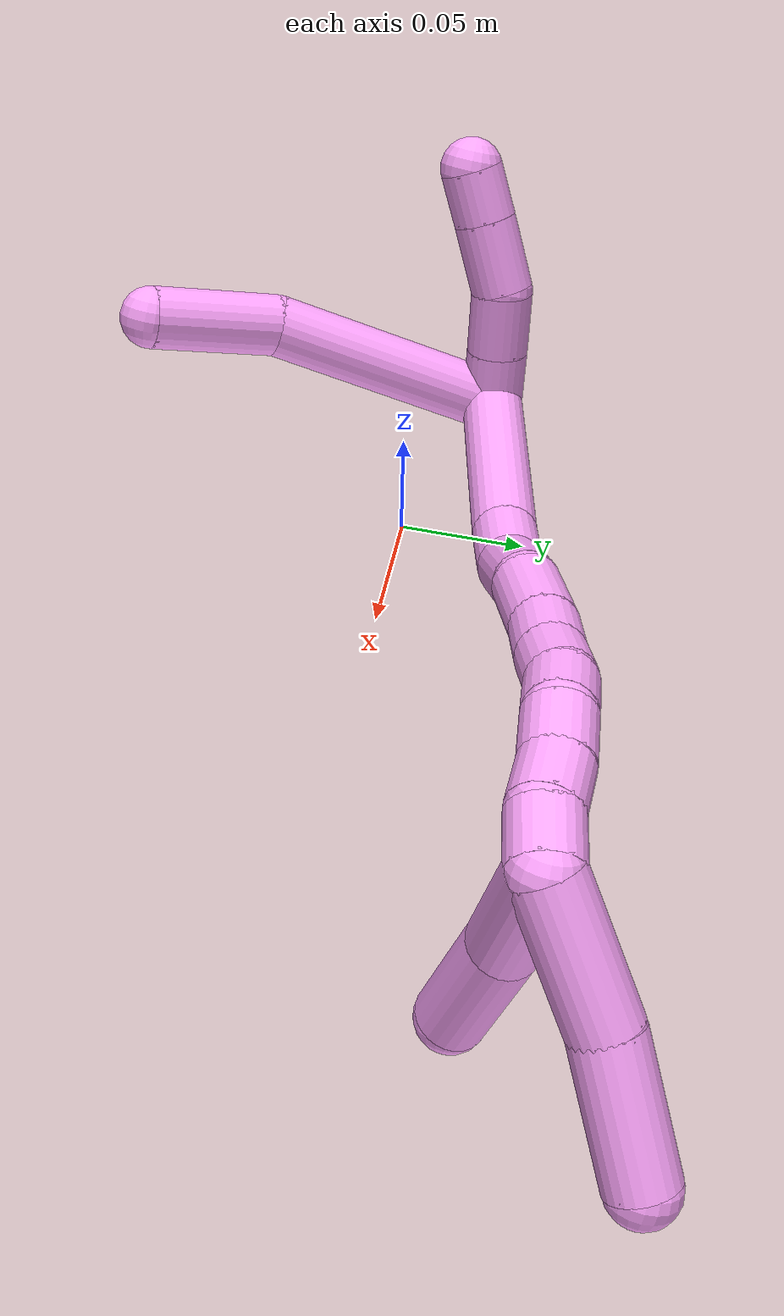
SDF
<sdf version="1.7">
 <world name="default">
  <model name="4">
   <static>0</static>
   <link name="4">
    <collision name="collision-cylinder-e_1_2_8">
     <pose>0.024315 -0.041398 0.007926 1.38163 0.523233 0.435683</pose>
     <geometry><cylinder><radius>0.0125</radius><length>0.097321</length></cylinder></geometry>
     <surface>
      <friction><ode><mu>1.16</mu><mu2>1.16</mu2><slip1>0</slip1><slip2>0</slip2></ode></friction>
      <contact><ode><kp>1e+06</kp><kd>1</kd><max_vel>0</max_vel><min_depth>0.001</min_depth></ode></contact>
     </surface>
    </collision>
    <visual name="visual-cylinder-e_1_2_8">
     <pose>0.024315 -0.041398 0.007926 1.38163 0.523233 0.435683</pose>
     <geometry><cylinder><radius>0.0125</radius><length>0.097321</length></cylinder></geometry>
     <material><ambient>1 0.65098 0.996078 1</ambient></material>
    </visual>
    <collision name="collision-cylinder-e_2_8_6">
     <pose>0.067047 -0.101564 0.014313 1.6526 0.774326 0.833268</pose>
     <geometry><cylinder><radius>0.0125</radius><length>0.052679</length></cylinder></geometry>
     <surface>
      <friction><ode><mu>1.16</mu><mu2>1.16</mu2><slip1>0</slip1><slip2>0</slip2></ode></friction>
      <contact><ode><kp>1e+06</kp><kd>1</kd><max_vel>0</max_vel><min_depth>0.001</min_depth></ode></contact>
     </surface>
    </collision>
    <visual name="visual-cylinder-e_2_8_6">
     <pose>0.067047 -0.101564 0.014313 1.6526 0.774326 0.833268</pose>
     <geometry><cylinder><radius>0.0125</radius><length>0.052679</length></cylinder></geometry>
     <material><ambient>1 0.65098 0.996078 1</ambient></material>
    </visual>
    <collision name="collision-cylinder-e_1_2_9">
     <pose>0.002675 -0.000629 0.011174 0.056251 0.234586 0.00663</pose>
     <geometry><cylinder><radius>0.0125</radius><length>0.023015</length></cylinder></geometry>
     <surface>
      <friction><ode><mu>1.16</mu><mu2>1.16</mu2><slip1>0</slip1><slip2>0</slip2></ode></friction>
      <contact><ode><kp>1e+06</kp><kd>1</kd><max_vel>0</max_vel><min_depth>0.001</min_depth></ode></contact>
     </surface>
    </collision>
    <visual name="visual-cylinder-e_1_2_9">
     <pose>0.002675 -0.000629 0.011174 0.056251 0.234586 0.00663</pose>
     <geometry><cylinder><radius>0.0125</radius><length>0.023015</length></cylinder></geometry>
     <material><ambient>1 0.65098 0.996078 1</ambient></material>
    </visual>
    <collision name="collision-cylinder-e_2_9_10">
     <pose>0.008581 -0.002136 0.035085 0.068773 0.247938 0.008573</pose>
     <geometry><cylinder><radius>0.0125</radius><length>0.026339</length></cylinder></geometry>
     <surface>
      <friction><ode><mu>1.16</mu><mu2>1.16</mu2><slip1>0</slip1><slip2>0</slip2></ode></friction>
      <contact><ode><kp>1e+06</kp><kd>1</kd><max_vel>0</max_vel><min_depth>0.001</min_depth></ode></contact>
     </surface>
    </collision>
    <visual name="visual-cylinder-e_2_9_10">
     <pose>0.008581 -0.002136 0.035085 0.068773 0.247938 0.008573</pose>
     <geometry><cylinder><radius>0.0125</radius><length>0.026339</length></cylinder></geometry>
     <material><ambient>1 0.65098 0.996078 1</ambient></material>
    </visual>
    <collision name="collision-cylinder-e_3_10_11">
     <pose>0.014866 -0.008942 0.061006 0.422624 0.208122 0.044799</pose>
     <geometry><cylinder><radius>0.0125</radius><length>0.02955</length></cylinder></geometry>
     <surface>
      <friction><ode><mu>1.16</mu><mu2>1.16</mu2><slip1>0</slip1><slip2>0</slip2></ode></friction>
      <contact><ode><kp>1e+06</kp><kd>1</kd><max_vel>0</max_vel><min_depth>0.001</min_depth></ode></contact>
     </surface>
    </collision>
    <visual name="visual-cylinder-e_3_10_11">
     <pose>0.014866 -0.008942 0.061006 0.422624 0.208122 0.044799</pose>
     <geometry><cylinder><radius>0.0125</radius><length>0.02955</length></cylinder></geometry>
     <material><ambient>1 0.65098 0.996078 1</ambient></material>
    </visual>
    <collision name="collision-cylinder-e_4_11_5">
     <pose>0.020093 -0.019235 0.083544 0.436487 0.207635 0.046206</pose>
     <geometry><cylinder><radius>0.0125</radius><length>0.021096</length></cylinder></geometry>
     <surface>
      <friction><ode><mu>1.16</mu><mu2>1.16</mu2><slip1>0</slip1><slip2>0</slip2></ode></friction>
      <contact><ode><kp>1e+06</kp><kd>1</kd><max_vel>0</max_vel><min_depth>0.001</min_depth></ode></contact>
     </surface>
    </collision>
    <visual name="visual-cylinder-e_4_11_5">
     <pose>0.020093 -0.019235 0.083544 0.436487 0.207635 0.046206</pose>
     <geometry><cylinder><radius>0.0125</radius><length>0.021096</length></cylinder></geometry>
     <material><ambient>1 0.65098 0.996078 1</ambient></material>
    </visual>
    <collision name="collision-cylinder-e_1_2_12">
     <pose>0.037059 0.019352 -0.015726 -2.25319 0.978505 -1.68276</pose>
     <geometry><cylinder><radius>0.0125</radius><length>0.089336</length></cylinder></geometry>
     <surface>
      <friction><ode><mu>1.16</mu><mu2>1.16</mu2><slip1>0</slip1><slip2>0</slip2></ode></friction>
      <contact><ode><kp>1e+06</kp><kd>1</kd><max_vel>0</max_vel><min_depth>0.001</min_depth></ode></contact>
     </surface>
    </collision>
    <visual name="visual-cylinder-e_1_2_12">
     <pose>0.037059 0.019352 -0.015726 -2.25319 0.978505 -1.68276</pose>
     <geometry><cylinder><radius>0.0125</radius><length>0.089336</length></cylinder></geometry>
     <material><ambient>1 0.65098 0.996078 1</ambient></material>
    </visual>
    <collision name="collision-cylinder-e_2_12_13">
     <pose>0.085259 0.044305 -0.033988 -1.99585 1.06656 -1.48231</pose>
     <geometry><cylinder><radius>0.0125</radius><length>0.025447</length></cylinder></geometry>
     <surface>
      <friction><ode><mu>1.16</mu><mu2>1.16</mu2><slip1>0</slip1><slip2>0</slip2></ode></friction>
      <contact><ode><kp>1e+06</kp><kd>1</kd><max_vel>0</max_vel><min_depth>0.001</min_depth></ode></contact>
     </surface>
    </collision>
    <visual name="visual-cylinder-e_2_12_13">
     <pose>0.085259 0.044305 -0.033988 -1.99585 1.06656 -1.48231</pose>
     <geometry><cylinder><radius>0.0125</radius><length>0.025447</length></cylinder></geometry>
     <material><ambient>1 0.65098 0.996078 1</ambient></material>
    </visual>
    <collision name="collision-cylinder-e_3_13_14">
     <pose>0.111065 0.057271 -0.034269 -1.27391 1.08718 -0.840857</pose>
     <geometry><cylinder><radius>0.0125</radius><length>0.033132</length></cylinder></geometry>
     <surface>
      <friction><ode><mu>1.16</mu><mu2>1.16</mu2><slip1>0</slip1><slip2>0</slip2></ode></friction>
      <contact><ode><kp>1e+06</kp><kd>1</kd><max_vel>0</max_vel><min_depth>0.001</min_depth></ode></contact>
     </surface>
    </collision>
    <visual name="visual-cylinder-e_3_13_14">
     <pose>0.111065 0.057271 -0.034269 -1.27391 1.08718 -0.840857</pose>
     <geometry><cylinder><radius>0.0125</radius><length>0.033132</length></cylinder></geometry>
     <material><ambient>1 0.65098 0.996078 1</ambient></material>
    </visual>
    <collision name="collision-cylinder-e_4_14_15">
     <pose>0.139112 0.072746 -0.033776 -1.78463 1.0157 -1.20846</pose>
     <geometry><cylinder><radius>0.0125</radius><length>0.031489</length></cylinder></geometry>
     <surface>
      <friction><ode><mu>1.16</mu><mu2>1.16</mu2><slip1>0</slip1><slip2>0</slip2></ode></friction>
      <contact><ode><kp>1e+06</kp><kd>1</kd><max_vel>0</max_vel><min_depth>0.001</min_depth></ode></contact>
     </surface>
    </collision>
    <visual name="visual-cylinder-e_4_14_15">
     <pose>0.139112 0.072746 -0.033776 -1.78463 1.0157 -1.20846</pose>
     <geometry><cylinder><radius>0.0125</radius><length>0.031489</length></cylinder></geometry>
     <material><ambient>1 0.65098 0.996078 1</ambient></material>
    </visual>
    <collision name="collision-cylinder-e_5_15_16">
     <pose>0.161645 0.085305 -0.036814 -1.85024 1.10247 -1.36888</pose>
     <geometry><cylinder><radius>0.0125</radius><length>0.020516</length></cylinder></geometry>
     <surface>
      <friction><ode><mu>1.16</mu><mu2>1.16</mu2><slip1>0</slip1><slip2>0</slip2></ode></friction>
      <contact><ode><kp>1e+06</kp><kd>1</kd><max_vel>0</max_vel><min_depth>0.001</min_depth></ode></contact>
     </surface>
    </collision>
    <visual name="visual-cylinder-e_5_15_16">
     <pose>0.161645 0.085305 -0.036814 -1.85024 1.10247 -1.36888</pose>
     <geometry><cylinder><radius>0.0125</radius><length>0.020516</length></cylinder></geometry>
     <material><ambient>1 0.65098 0.996078 1</ambient></material>
    </visual>
    <collision name="collision-cylinder-e_6_16_17">
     <pose>0.179657 0.094415 -0.03851 -1.66029 1.08495 -1.16578</pose>
     <geometry><cylinder><radius>0.0125</radius><length>0.020036</length></cylinder></geometry>
     <surface>
      <friction><ode><mu>1.16</mu><mu2>1.16</mu2><slip1>0</slip1><slip2>0</slip2></ode></friction>
      <contact><ode><kp>1e+06</kp><kd>1</kd><max_vel>0</max_vel><min_depth>0.001</min_depth></ode></contact>
     </surface>
    </collision>
    <visual name="visual-cylinder-e_6_16_17">
     <pose>0.179657 0.094415 -0.03851 -1.66029 1.08495 -1.16578</pose>
     <geometry><cylinder><radius>0.0125</radius><length>0.020036</length></cylinder></geometry>
     <material><ambient>1 0.65098 0.996078 1</ambient></material>
    </visual>
    <collision name="collision-cylinder-e_7_17_18">
     <pose>0.197955 0.102041 -0.040449 -2.04457 1.23128 -1.71661</pose>
     <geometry><cylinder><radius>0.0125</radius><length>0.02002</length></cylinder></geometry>
     <surface>
      <friction><ode><mu>1.16</mu><mu2>1.16</mu2><slip1>0</slip1><slip2>0</slip2></ode></friction>
      <contact><ode><kp>1e+06</kp><kd>1</kd><max_vel>0</max_vel><min_depth>0.001</min_depth></ode></contact>
     </surface>
    </collision>
    <visual name="visual-cylinder-e_7_17_18">
     <pose>0.197955 0.102041 -0.040449 -2.04457 1.23128 -1.71661</pose>
     <geometry><cylinder><radius>0.0125</radius><length>0.02002</length></cylinder></geometry>
     <material><ambient>1 0.65098 0.996078 1</ambient></material>
    </visual>
    <collision name="collision-cylinder-e_8_18_19">
     <pose>0.215816 0.1082 -0.046318 -2.5083 1.00114 -2.06225</pose>
     <geometry><cylinder><radius>0.0125</radius><length>0.020003</length></cylinder></geometry>
     <surface>
      <friction><ode><mu>1.16</mu><mu2>1.16</mu2><slip1>0</slip1><slip2>0</slip2></ode></friction>
      <contact><ode><kp>1e+06</kp><kd>1</kd><max_vel>0</max_vel><min_depth>0.001</min_depth></ode></contact>
     </surface>
    </collision>
    <visual name="visual-cylinder-e_8_18_19">
     <pose>0.215816 0.1082 -0.046318 -2.5083 1.00114 -2.06225</pose>
     <geometry><cylinder><radius>0.0125</radius><length>0.020003</length></cylinder></geometry>
     <material><ambient>1 0.65098 0.996078 1</ambient></material>
    </visual>
    <collision name="collision-cylinder-e_9_19_20">
     <pose>0.233238 0.113304 -0.054589 -2.68812 1.11934 -2.43593</pose>
     <geometry><cylinder><radius>0.0125</radius><length>0.020005</length></cylinder></geometry>
     <surface>
      <friction><ode><mu>1.16</mu><mu2>1.16</mu2><slip1>0</slip1><slip2>0</slip2></ode></friction>
      <contact><ode><kp>1e+06</kp><kd>1</kd><max_vel>0</max_vel><min_depth>0.001</min_depth></ode></contact>
     </surface>
    </collision>
    <visual name="visual-cylinder-e_9_19_20">
     <pose>0.233238 0.113304 -0.054589 -2.68812 1.11934 -2.43593</pose>
     <geometry><cylinder><radius>0.0125</radius><length>0.020005</length></cylinder></geometry>
     <material><ambient>1 0.65098 0.996078 1</ambient></material>
    </visual>
    <collision name="collision-cylinder-e_10_20_1">
     <pose>0.249747 0.119074 -0.063888 -2.51909 0.848376 -1.90364</pose>
     <geometry><cylinder><radius>0.0125</radius><length>0.020016</length></cylinder></geometry>
     <surface>
      <friction><ode><mu>1.16</mu><mu2>1.16</mu2><slip1>0</slip1><slip2>0</slip2></ode></friction>
      <contact><ode><kp>1e+06</kp><kd>1</kd><max_vel>0</max_vel><min_depth>0.001</min_depth></ode></contact>
     </surface>
    </collision>
    <visual name="visual-cylinder-e_10_20_1">
     <pose>0.249747 0.119074 -0.063888 -2.51909 0.848376 -1.90364</pose>
     <geometry><cylinder><radius>0.0125</radius><length>0.020016</length></cylinder></geometry>
     <material><ambient>1 0.65098 0.996078 1</ambient></material>
    </visual>
    <collision name="collision-cylinder-e_1_1_21">
     <pose>0.255532 0.137054 -0.090502 -2.55481 -0.067445 0.222409</pose>
     <geometry><cylinder><radius>0.0125</radius><length>0.051126</length></cylinder></geometry>
     <surface>
      <friction><ode><mu>1.16</mu><mu2>1.16</mu2><slip1>0</slip1><slip2>0</slip2></ode></friction>
      <contact><ode><kp>1e+06</kp><kd>1</kd><max_vel>0</max_vel><min_depth>0.001</min_depth></ode></contact>
     </surface>
    </collision>
    <visual name="visual-cylinder-e_1_1_21">
     <pose>0.255532 0.137054 -0.090502 -2.55481 -0.067445 0.222409</pose>
     <geometry><cylinder><radius>0.0125</radius><length>0.051126</length></cylinder></geometry>
     <material><ambient>1 0.65098 0.996078 1</ambient></material>
    </visual>
    <collision name="collision-cylinder-e_2_21_4">
     <pose>0.254694 0.162645 -0.133301 -2.6527 0.036206 -0.144914</pose>
     <geometry><cylinder><radius>0.0125</radius><length>0.048874</length></cylinder></geometry>
     <surface>
      <friction><ode><mu>1.16</mu><mu2>1.16</mu2><slip1>0</slip1><slip2>0</slip2></ode></friction>
      <contact><ode><kp>1e+06</kp><kd>1</kd><max_vel>0</max_vel><min_depth>0.001</min_depth></ode></contact>
     </surface>
    </collision>
    <visual name="visual-cylinder-e_2_21_4">
     <pose>0.254694 0.162645 -0.133301 -2.6527 0.036206 -0.144914</pose>
     <geometry><cylinder><radius>0.0125</radius><length>0.048874</length></cylinder></geometry>
     <material><ambient>1 0.65098 0.996078 1</ambient></material>
    </visual>
    <collision name="collision-cylinder-e_1_1_22">
     <pose>0.24321 0.116772 -0.090289 2.85658 -0.570037 -2.23085</pose>
     <geometry><cylinder><radius>0.0125</radius><length>0.052048</length></cylinder></geometry>
     <surface>
      <friction><ode><mu>1.16</mu><mu2>1.16</mu2><slip1>0</slip1><slip2>0</slip2></ode></friction>
      <contact><ode><kp>1e+06</kp><kd>1</kd><max_vel>0</max_vel><min_depth>0.001</min_depth></ode></contact>
     </surface>
    </collision>
    <visual name="visual-cylinder-e_1_1_22">
     <pose>0.24321 0.116772 -0.090289 2.85658 -0.570037 -2.23085</pose>
     <geometry><cylinder><radius>0.0125</radius><length>0.052048</length></cylinder></geometry>
     <material><ambient>1 0.65098 0.996078 1</ambient></material>
    </visual>
    <collision name="collision-cylinder-e_2_22_3">
     <pose>0.220325 0.103361 -0.132389 2.81021 -0.377649 -1.70388</pose>
     <geometry><cylinder><radius>0.0125</radius><length>0.047952</length></cylinder></geometry>
     <surface>
      <friction><ode><mu>1.16</mu><mu2>1.16</mu2><slip1>0</slip1><slip2>0</slip2></ode></friction>
      <contact><ode><kp>1e+06</kp><kd>1</kd><max_vel>0</max_vel><min_depth>0.001</min_depth></ode></contact>
     </surface>
    </collision>
    <visual name="visual-cylinder-e_2_22_3">
     <pose>0.220325 0.103361 -0.132389 2.81021 -0.377649 -1.70388</pose>
     <geometry><cylinder><radius>0.0125</radius><length>0.047952</length></cylinder></geometry>
     <material><ambient>1 0.65098 0.996078 1</ambient></material>
    </visual>
    <collision name="collision-sphere-3">
     <pose>0.211485 0.09611 -0.153462 0 -0 0</pose>
     <geometry><sphere><radius>0.0125</radius></sphere></geometry>
     <surface>
      <friction><ode><mu>1.16</mu><mu2>1.16</mu2><slip1>0</slip1><slip2>0</slip2></ode></friction>
      <contact><ode><kp>1e+06</kp><kd>1</kd><max_vel>0</max_vel><min_depth>0.001</min_depth></ode></contact>
     </surface>
    </collision>
    <visual name="visual-sphere-3">
     <pose>0.211485 0.09611 -0.153462 0 -0 0</pose>
     <geometry><sphere><radius>0.0125</radius></sphere></geometry>
     <material><ambient>1 0.65098 0.996078 1</ambient></material>
    </visual>
    <collision name="collision-sphere-22">
     <pose>0.229166 0.110612 -0.111315 0 -0 0</pose>
     <geometry><sphere><radius>0.0125</radius></sphere></geometry>
     <surface>
      <friction><ode><mu>1.16</mu><mu2>1.16</mu2><slip1>0</slip1><slip2>0</slip2></ode></friction>
      <contact><ode><kp>1e+06</kp><kd>1</kd><max_vel>0</max_vel><min_depth>0.001</min_depth></ode></contact>
     </surface>
    </collision>
    <visual name="visual-sphere-22">
     <pose>0.229166 0.110612 -0.111315 0 -0 0</pose>
     <geometry><sphere><radius>0.0125</radius></sphere></geometry>
     <material><ambient>1 0.65098 0.996078 1</ambient></material>
    </visual>
    <collision name="collision-sphere-4">
     <pose>0.255578 0.174114 -0.154861 0 -0 0</pose>
     <geometry><sphere><radius>0.0125</radius></sphere></geometry>
     <surface>
      <friction><ode><mu>1.16</mu><mu2>1.16</mu2><slip1>0</slip1><slip2>0</slip2></ode></friction>
      <contact><ode><kp>1e+06</kp><kd>1</kd><max_vel>0</max_vel><min_depth>0.001</min_depth></ode></contact>
     </surface>
    </collision>
    <visual name="visual-sphere-4">
     <pose>0.255578 0.174114 -0.154861 0 -0 0</pose>
     <geometry><sphere><radius>0.0125</radius></sphere></geometry>
     <material><ambient>1 0.65098 0.996078 1</ambient></material>
    </visual>
    <collision name="collision-sphere-21">
     <pose>0.253809 0.151176 -0.111741 0 -0 0</pose>
     <geometry><sphere><radius>0.0125</radius></sphere></geometry>
     <surface>
      <friction><ode><mu>1.16</mu><mu2>1.16</mu2><slip1>0</slip1><slip2>0</slip2></ode></friction>
      <contact><ode><kp>1e+06</kp><kd>1</kd><max_vel>0</max_vel><min_depth>0.001</min_depth></ode></contact>
     </surface>
    </collision>
    <visual name="visual-sphere-21">
     <pose>0.253809 0.151176 -0.111741 0 -0 0</pose>
     <geometry><sphere><radius>0.0125</radius></sphere></geometry>
     <material><ambient>1 0.65098 0.996078 1</ambient></material>
    </visual>
    <collision name="collision-sphere-1">
     <pose>0.257255 0.122932 -0.069264 0 -0 0</pose>
     <geometry><sphere><radius>0.0125</radius></sphere></geometry>
     <surface>
      <friction><ode><mu>1.16</mu><mu2>1.16</mu2><slip1>0</slip1><slip2>0</slip2></ode></friction>
      <contact><ode><kp>1e+06</kp><kd>1</kd><max_vel>0</max_vel><min_depth>0.001</min_depth></ode></contact>
     </surface>
    </collision>
    <visual name="visual-sphere-1">
     <pose>0.257255 0.122932 -0.069264 0 -0 0</pose>
     <geometry><sphere><radius>0.0125</radius></sphere></geometry>
     <material><ambient>1 0.65098 0.996078 1</ambient></material>
    </visual>
    <collision name="collision-sphere-11">
     <pose>0.017919 -0.014872 0.074191 0 -0 0</pose>
     <geometry><sphere><radius>0.0125</radius></sphere></geometry>
     <surface>
      <friction><ode><mu>1.16</mu><mu2>1.16</mu2><slip1>0</slip1><slip2>0</slip2></ode></friction>
      <contact><ode><kp>1e+06</kp><kd>1</kd><max_vel>0</max_vel><min_depth>0.001</min_depth></ode></contact>
     </surface>
    </collision>
    <visual name="visual-sphere-11">
     <pose>0.017919 -0.014872 0.074191 0 -0 0</pose>
     <geometry><sphere><radius>0.0125</radius></sphere></geometry>
     <material><ambient>1 0.65098 0.996078 1</ambient></material>
    </visual>
    <collision name="collision-sphere-10">
     <pose>0.011813 -0.003013 0.047822 0 -0 0</pose>
     <geometry><sphere><radius>0.0125</radius></sphere></geometry>
     <surface>
      <friction><ode><mu>1.16</mu><mu2>1.16</mu2><slip1>0</slip1><slip2>0</slip2></ode></friction>
      <contact><ode><kp>1e+06</kp><kd>1</kd><max_vel>0</max_vel><min_depth>0.001</min_depth></ode></contact>
     </surface>
    </collision>
    <visual name="visual-sphere-10">
     <pose>0.011813 -0.003013 0.047822 0 -0 0</pose>
     <geometry><sphere><radius>0.0125</radius></sphere></geometry>
     <material><ambient>1 0.65098 0.996078 1</ambient></material>
    </visual>
    <collision name="collision-sphere-6">
     <pose>0.085465 -0.12033 0.012774 0 -0 0</pose>
     <geometry><sphere><radius>0.0125</radius></sphere></geometry>
     <surface>
      <friction><ode><mu>1.16</mu><mu2>1.16</mu2><slip1>0</slip1><slip2>0</slip2></ode></friction>
      <contact><ode><kp>1e+06</kp><kd>1</kd><max_vel>0</max_vel><min_depth>0.001</min_depth></ode></contact>
     </surface>
    </collision>
    <visual name="visual-sphere-6">
     <pose>0.085465 -0.12033 0.012774 0 -0 0</pose>
     <geometry><sphere><radius>0.0125</radius></sphere></geometry>
     <material><ambient>1 0.65098 0.996078 1</ambient></material>
    </visual>
    <collision name="collision-sphere-9">
     <pose>0.00535 -0.001258 0.022349 0 -0 0</pose>
     <geometry><sphere><radius>0.0125</radius></sphere></geometry>
     <surface>
      <friction><ode><mu>1.16</mu><mu2>1.16</mu2><slip1>0</slip1><slip2>0</slip2></ode></friction>
      <contact><ode><kp>1e+06</kp><kd>1</kd><max_vel>0</max_vel><min_depth>0.001</min_depth></ode></contact>
     </surface>
    </collision>
    <visual name="visual-sphere-9">
     <pose>0.00535 -0.001258 0.022349 0 -0 0</pose>
     <geometry><sphere><radius>0.0125</radius></sphere></geometry>
     <material><ambient>1 0.65098 0.996078 1</ambient></material>
    </visual>
    <collision name="collision-sphere-2">
     <geometry><sphere><radius>0.0125</radius></sphere></geometry>
     <surface>
      <friction><ode><mu>1.16</mu><mu2>1.16</mu2><slip1>0</slip1><slip2>0</slip2></ode></friction>
      <contact><ode><kp>1e+06</kp><kd>1</kd><max_vel>0</max_vel><min_depth>0.001</min_depth></ode></contact>
     </surface>
    </collision>
    <visual name="visual-sphere-2">
     <geometry><sphere><radius>0.0125</radius></sphere></geometry>
     <material><ambient>1 0.65098 0.996078 1</ambient></material>
    </visual>
    <collision name="collision-sphere-19">
     <pose>0.224238 0.111392 -0.050666 0 -0 0</pose>
     <geometry><sphere><radius>0.0125</radius></sphere></geometry>
     <surface>
      <friction><ode><mu>1.16</mu><mu2>1.16</mu2><slip1>0</slip1><slip2>0</slip2></ode></friction>
      <contact><ode><kp>1e+06</kp><kd>1</kd><max_vel>0</max_vel><min_depth>0.001</min_depth></ode></contact>
     </surface>
    </collision>
    <visual name="visual-sphere-19">
     <pose>0.224238 0.111392 -0.050666 0 -0 0</pose>
     <geometry><sphere><radius>0.0125</radius></sphere></geometry>
     <material><ambient>1 0.65098 0.996078 1</ambient></material>
    </visual>
    <collision name="collision-sphere-8">
     <pose>0.04863 -0.082797 0.015852 0 -0 0</pose>
     <geometry><sphere><radius>0.0125</radius></sphere></geometry>
     <surface>
      <friction><ode><mu>1.16</mu><mu2>1.16</mu2><slip1>0</slip1><slip2>0</slip2></ode></friction>
      <contact><ode><kp>1e+06</kp><kd>1</kd><max_vel>0</max_vel><min_depth>0.001</min_depth></ode></contact>
     </surface>
    </collision>
    <visual name="visual-sphere-8">
     <pose>0.04863 -0.082797 0.015852 0 -0 0</pose>
     <geometry><sphere><radius>0.0125</radius></sphere></geometry>
     <material><ambient>1 0.65098 0.996078 1</ambient></material>
    </visual>
    <collision name="collision-sphere-5">
     <pose>0.022268 -0.023599 0.092898 0 -0 0</pose>
     <geometry><sphere><radius>0.0125</radius></sphere></geometry>
     <surface>
      <friction><ode><mu>1.16</mu><mu2>1.16</mu2><slip1>0</slip1><slip2>0</slip2></ode></friction>
      <contact><ode><kp>1e+06</kp><kd>1</kd><max_vel>0</max_vel><min_depth>0.001</min_depth></ode></contact>
     </surface>
    </collision>
    <visual name="visual-sphere-5">
     <pose>0.022268 -0.023599 0.092898 0 -0 0</pose>
     <geometry><sphere><radius>0.0125</radius></sphere></geometry>
     <material><ambient>1 0.65098 0.996078 1</ambient></material>
    </visual>
    <collision name="collision-sphere-12">
     <pose>0.074119 0.038704 -0.031453 0 -0 0</pose>
     <geometry><sphere><radius>0.0125</radius></sphere></geometry>
     <surface>
      <friction><ode><mu>1.16</mu><mu2>1.16</mu2><slip1>0</slip1><slip2>0</slip2></ode></friction>
      <contact><ode><kp>1e+06</kp><kd>1</kd><max_vel>0</max_vel><min_depth>0.001</min_depth></ode></contact>
     </surface>
    </collision>
    <visual name="visual-sphere-12">
     <pose>0.074119 0.038704 -0.031453 0 -0 0</pose>
     <geometry><sphere><radius>0.0125</radius></sphere></geometry>
     <material><ambient>1 0.65098 0.996078 1</ambient></material>
    </visual>
    <collision name="collision-sphere-13">
     <pose>0.096399 0.049905 -0.036523 0 -0 0</pose>
     <geometry><sphere><radius>0.0125</radius></sphere></geometry>
     <surface>
      <friction><ode><mu>1.16</mu><mu2>1.16</mu2><slip1>0</slip1><slip2>0</slip2></ode></friction>
      <contact><ode><kp>1e+06</kp><kd>1</kd><max_vel>0</max_vel><min_depth>0.001</min_depth></ode></contact>
     </surface>
    </collision>
    <visual name="visual-sphere-13">
     <pose>0.096399 0.049905 -0.036523 0 -0 0</pose>
     <geometry><sphere><radius>0.0125</radius></sphere></geometry>
     <material><ambient>1 0.65098 0.996078 1</ambient></material>
    </visual>
    <collision name="collision-sphere-14">
     <pose>0.125731 0.064637 -0.032016 0 -0 0</pose>
     <geometry><sphere><radius>0.0125</radius></sphere></geometry>
     <surface>
      <friction><ode><mu>1.16</mu><mu2>1.16</mu2><slip1>0</slip1><slip2>0</slip2></ode></friction>
      <contact><ode><kp>1e+06</kp><kd>1</kd><max_vel>0</max_vel><min_depth>0.001</min_depth></ode></contact>
     </surface>
    </collision>
    <visual name="visual-sphere-14">
     <pose>0.125731 0.064637 -0.032016 0 -0 0</pose>
     <geometry><sphere><radius>0.0125</radius></sphere></geometry>
     <material><ambient>1 0.65098 0.996078 1</ambient></material>
    </visual>
    <collision name="collision-sphere-15">
     <pose>0.152492 0.080854 -0.035537 0 -0 0</pose>
     <geometry><sphere><radius>0.0125</radius></sphere></geometry>
     <surface>
      <friction><ode><mu>1.16</mu><mu2>1.16</mu2><slip1>0</slip1><slip2>0</slip2></ode></friction>
      <contact><ode><kp>1e+06</kp><kd>1</kd><max_vel>0</max_vel><min_depth>0.001</min_depth></ode></contact>
     </surface>
    </collision>
    <visual name="visual-sphere-15">
     <pose>0.152492 0.080854 -0.035537 0 -0 0</pose>
     <geometry><sphere><radius>0.0125</radius></sphere></geometry>
     <material><ambient>1 0.65098 0.996078 1</ambient></material>
    </visual>
    <collision name="collision-sphere-16">
     <pose>0.170799 0.089756 -0.038091 0 -0 0</pose>
     <geometry><sphere><radius>0.0125</radius></sphere></geometry>
     <surface>
      <friction><ode><mu>1.16</mu><mu2>1.16</mu2><slip1>0</slip1><slip2>0</slip2></ode></friction>
      <contact><ode><kp>1e+06</kp><kd>1</kd><max_vel>0</max_vel><min_depth>0.001</min_depth></ode></contact>
     </surface>
    </collision>
    <visual name="visual-sphere-16">
     <pose>0.170799 0.089756 -0.038091 0 -0 0</pose>
     <geometry><sphere><radius>0.0125</radius></sphere></geometry>
     <material><ambient>1 0.65098 0.996078 1</ambient></material>
    </visual>
    <collision name="collision-sphere-17">
     <pose>0.188516 0.099074 -0.038928 0 -0 0</pose>
     <geometry><sphere><radius>0.0125</radius></sphere></geometry>
     <surface>
      <friction><ode><mu>1.16</mu><mu2>1.16</mu2><slip1>0</slip1><slip2>0</slip2></ode></friction>
      <contact><ode><kp>1e+06</kp><kd>1</kd><max_vel>0</max_vel><min_depth>0.001</min_depth></ode></contact>
     </surface>
    </collision>
    <visual name="visual-sphere-17">
     <pose>0.188516 0.099074 -0.038928 0 -0 0</pose>
     <geometry><sphere><radius>0.0125</radius></sphere></geometry>
     <material><ambient>1 0.65098 0.996078 1</ambient></material>
    </visual>
    <collision name="collision-sphere-18">
     <pose>0.207393 0.105007 -0.04197 0 -0 0</pose>
     <geometry><sphere><radius>0.0125</radius></sphere></geometry>
     <surface>
      <friction><ode><mu>1.16</mu><mu2>1.16</mu2><slip1>0</slip1><slip2>0</slip2></ode></friction>
      <contact><ode><kp>1e+06</kp><kd>1</kd><max_vel>0</max_vel><min_depth>0.001</min_depth></ode></contact>
     </surface>
    </collision>
    <visual name="visual-sphere-18">
     <pose>0.207393 0.105007 -0.04197 0 -0 0</pose>
     <geometry><sphere><radius>0.0125</radius></sphere></geometry>
     <material><ambient>1 0.65098 0.996078 1</ambient></material>
    </visual>
    <collision name="collision-sphere-20">
     <pose>0.242238 0.115215 -0.058512 0 -0 0</pose>
     <geometry><sphere><radius>0.0125</radius></sphere></geometry>
     <surface>
      <friction><ode><mu>1.16</mu><mu2>1.16</mu2><slip1>0</slip1><slip2>0</slip2></ode></friction>
      <contact><ode><kp>1e+06</kp><kd>1</kd><max_vel>0</max_vel><min_depth>0.001</min_depth></ode></contact>
     </surface>
    </collision>
    <visual name="visual-sphere-20">
     <pose>0.242238 0.115215 -0.058512 0 -0 0</pose>
     <geometry><sphere><radius>0.0125</radius></sphere></geometry>
     <material><ambient>1 0.65098 0.996078 1</ambient></material>
    </visual>
    <inertial>
     <pose>0.125582 0.047218 -0.034694 0 -0 0</pose>
     <mass>0.75</mass>
     <inertia><ixx>9.3e-05</ixx><ixy>0</ixy><ixz>0</ixz><iyy>7.4e-05</iyy><iyz>0</iyz><izz>-8e-05</izz></inertia>
    </inertial>
   </link>
   <pose>-0.060857 0.025661 0.018875 0.058401 -0.580664 -0.255769</pose>
  </model>
 </world>
</sdf>
